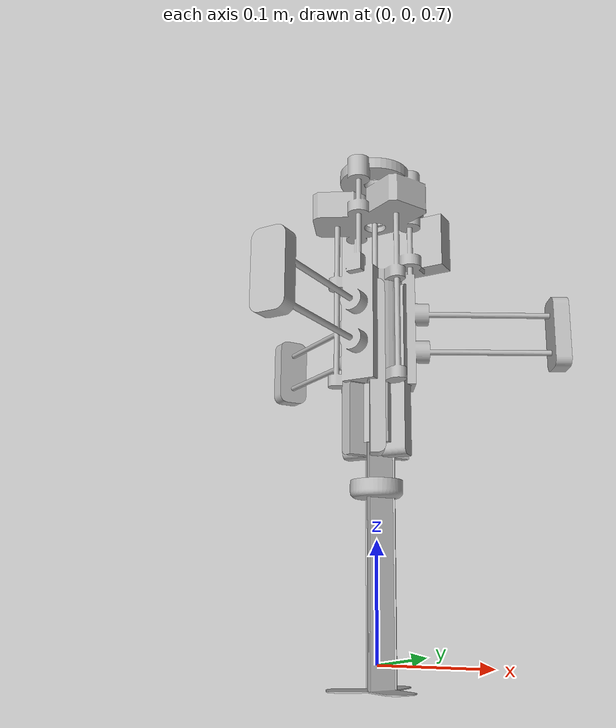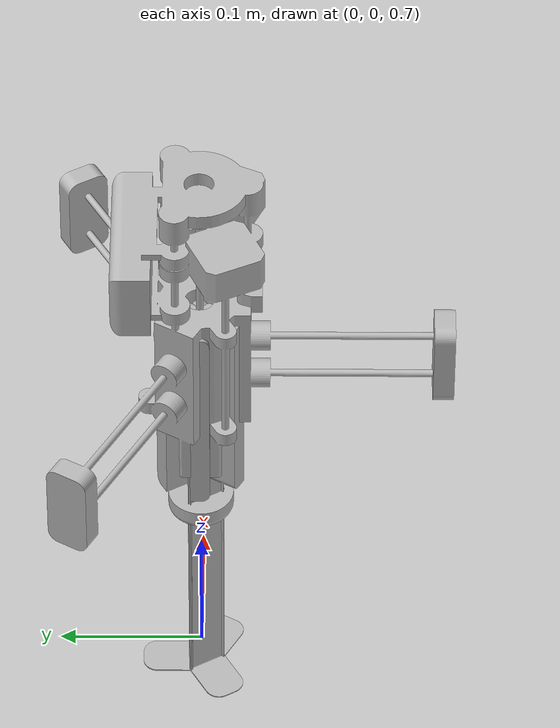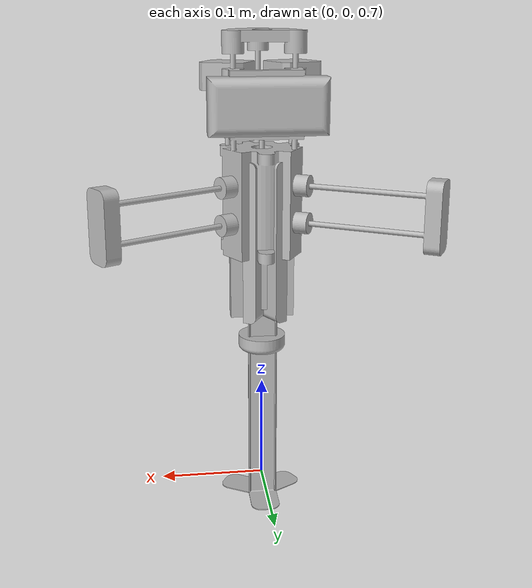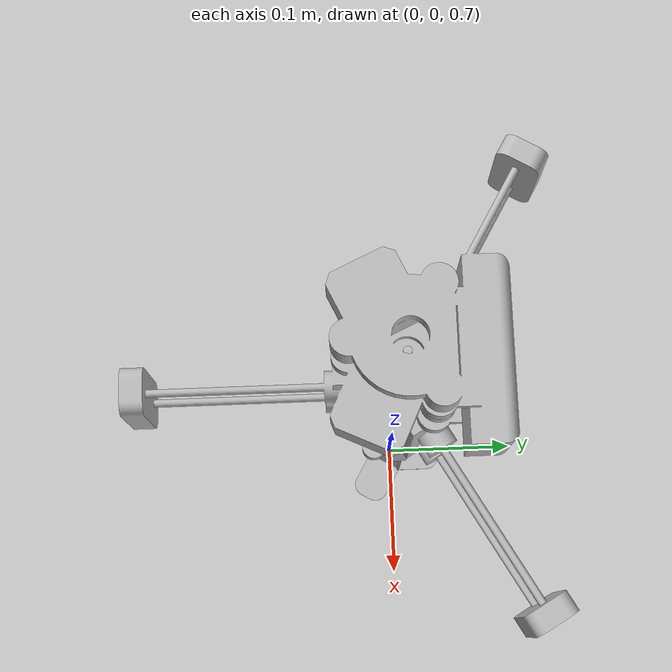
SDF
<sdf version='1.7'>
  <model name='gripper'>
    <joint name='world_to_base' type='fixed'>
      <pose relative_to='__model__'>0 0 1 3.14159 -0 0</pose>
      <parent>world</parent>
      <child>gripper_base_link</child>
    </joint>
    <link name='gripper_base_link'>
      <pose relative_to='world_to_base'>0 0 0 0 -0 0</pose>
      <inertial>
        <pose>0 0 0.025 3.14159 -0 0</pose>
        <mass>1.5</mass>
        <inertia>
          <ixx>0.00995</ixx>
          <ixy>2.73e-06</ixy>
          <ixz>-1.432e-05</ixz>
          <iyy>0.01008</iyy>
          <iyz>0.00012138</iyz>
          <izz>0.00513</izz>
        </inertia>
      </inertial>
      <collision name='gripper_base_link_collision'>
        <pose>0 0 0 0 -0 0</pose>
        <geometry>
          <cylinder>
            <length>0.1</length>
            <radius>0.03</radius>
          </cylinder>
        </geometry>
      </collision>
      <visual name='gripper_base_link_visual'>
        <pose>0 0 0 0 -0 0</pose>
        <geometry>
          <mesh>
            <scale>1 1 1</scale>
            <uri>model://gripper_description/meshes/main body visual.STL</uri>
          </mesh>
        </geometry>
      </visual>
    </link>
    <joint name='finger_1_prismatic_joint' type='prismatic'>
      <pose relative_to='gripper_base_link'>0 0 0 -0 -1.5708 0</pose>
      <parent>gripper_base_link</parent>
      <child>finger_1_intermediate</child>
      <axis>
        <xyz>0 1 0</xyz>
        <limit>
          <lower>0.049</lower>
          <upper>0.134</upper>
          <effort>40</effort>
          <velocity>0.015</velocity>
        </limit>
        <dynamics>
          <damping>1</damping>
          <friction>0</friction>
          <spring_reference>0</spring_reference>
          <spring_stiffness>0</spring_stiffness>
        </dynamics>
      </axis>
    </joint>
    <link name='finger_1_intermediate'>
      <pose relative_to='finger_1_prismatic_joint'>0 0 0 0 -0 0</pose>
      <inertial>
        <pose>0 0 0 0 -0 0</pose>
        <mass>0.1</mass>
        <inertia>
          <ixx>5.559e-05</ixx>
          <ixy>-4.723e-05</ixy>
          <ixz>1.16e-06</ixz>
          <iyy>0.00014636</iyy>
          <iyz>1e-06</iyz>
          <izz>0.00015418</izz>
        </inertia>
      </inertial>
      <collision name='finger_1_intermediate_collision'>
        <pose>0 0 0 0 -0 0</pose>
        <geometry>
          <mesh>
            <scale>1 1 1</scale>
            <uri>model://gripper_description/meshes/nut collision.STL</uri>
          </mesh>
        </geometry>
      </collision>
      <visual name='finger_1_intermediate_visual'>
        <pose>0 0 0 0 -0 0</pose>
        <geometry>
          <mesh>
            <scale>1 1 1</scale>
            <uri>model://gripper_description/meshes/nut visual.STL</uri>
          </mesh>
        </geometry>
      </visual>
    </link>
    <joint name='finger_1_revolute_joint' type='revolute'>
      <pose relative_to='finger_1_intermediate'>0 0 0 0 -0 0</pose>
      <parent>finger_1_intermediate</parent>
      <child>finger_1</child>
      <axis>
        <xyz>0 0 1</xyz>
        <limit>
          <lower>-0.7</lower>
          <upper>0.7</upper>
          <effort>40</effort>
          <velocity>0.1</velocity>
        </limit>
        <dynamics>
          <damping>1</damping>
          <friction>0</friction>
          <spring_reference>0</spring_reference>
          <spring_stiffness>0</spring_stiffness>
        </dynamics>
      </axis>
    </joint>
    <link name='finger_1'>
      <pose relative_to='finger_1_revolute_joint'>0 0 0 0 -0 0</pose>
      <inertial>
        <pose>0 0 0 0 -0 0</pose>
        <mass>0.2</mass>
        <inertia>
          <ixx>0.00028344</ixx>
          <ixy>-0.00056723</ixy>
          <ixz>-6.59e-06</ixz>
          <iyy>0.00138</iyy>
          <iyz>2.4e-06</iyz>
          <izz>0.0016</izz>
        </inertia>
      </inertial>
      <collision name='finger_1_collision'>
        <pose>0 0 0 0 -0 0</pose>
        <geometry>
          <mesh>
            <scale>1 1 1</scale>
            <uri>model://gripper_description/meshes/finger platform collision.STL</uri>
          </mesh>
        </geometry>
      </collision>
      <visual name='finger_1_visual'>
        <pose>0 0 0 0 -0 0</pose>
        <geometry>
          <mesh>
            <scale>1 1 1</scale>
            <uri>model://gripper_description/meshes/finger platform visual.STL</uri>
          </mesh>
        </geometry>
      </visual>
    </link>
    <joint name='finger_2_prismatic_joint' type='prismatic'>
      <pose relative_to='gripper_base_link'>0 0 0 -2.0944 -1.5708 0</pose>
      <parent>gripper_base_link</parent>
      <child>finger_2_intermediate</child>
      <axis>
        <xyz>0 1 0</xyz>
        <limit>
          <lower>0.049</lower>
          <upper>0.134</upper>
          <effort>40</effort>
          <velocity>0.015</velocity>
        </limit>
        <dynamics>
          <damping>1</damping>
          <friction>0</friction>
          <spring_reference>0</spring_reference>
          <spring_stiffness>0</spring_stiffness>
        </dynamics>
      </axis>
    </joint>
    <link name='finger_2_intermediate'>
      <pose relative_to='finger_2_prismatic_joint'>0 0 0 0 -0 0</pose>
      <inertial>
        <pose>0 0 0 0 -0 0</pose>
        <mass>0.1</mass>
        <inertia>
          <ixx>5.559e-05</ixx>
          <ixy>-4.723e-05</ixy>
          <ixz>1.16e-06</ixz>
          <iyy>0.00014636</iyy>
          <iyz>1e-06</iyz>
          <izz>0.00015418</izz>
        </inertia>
      </inertial>
      <collision name='finger_2_intermediate_collision'>
        <pose>0 0 0 0 -0 0</pose>
        <geometry>
          <mesh>
            <scale>1 1 1</scale>
            <uri>model://gripper_description/meshes/nut collision.STL</uri>
          </mesh>
        </geometry>
      </collision>
      <visual name='finger_2_intermediate_visual'>
        <pose>0 0 0 0 -0 0</pose>
        <geometry>
          <mesh>
            <scale>1 1 1</scale>
            <uri>model://gripper_description/meshes/nut visual.STL</uri>
          </mesh>
        </geometry>
      </visual>
    </link>
    <joint name='finger_2_revolute_joint' type='revolute'>
      <pose relative_to='finger_2_intermediate'>0 0 0 0 -0 0</pose>
      <parent>finger_2_intermediate</parent>
      <child>finger_2</child>
      <axis>
        <xyz>0 0 1</xyz>
        <limit>
          <lower>-0.7</lower>
          <upper>0.7</upper>
          <effort>40</effort>
          <velocity>0.1</velocity>
        </limit>
        <dynamics>
          <damping>1</damping>
          <friction>0</friction>
          <spring_reference>0</spring_reference>
          <spring_stiffness>0</spring_stiffness>
        </dynamics>
      </axis>
    </joint>
    <link name='finger_2'>
      <pose relative_to='finger_2_revolute_joint'>0 0 0 0 -0 0</pose>
      <inertial>
        <pose>0 0 0 0 -0 0</pose>
        <mass>0.2</mass>
        <inertia>
          <ixx>0.00028344</ixx>
          <ixy>-0.00056723</ixy>
          <ixz>-6.59e-06</ixz>
          <iyy>0.00138</iyy>
          <iyz>2.4e-06</iyz>
          <izz>0.0016</izz>
        </inertia>
      </inertial>
      <collision name='finger_2_collision'>
        <pose>0 0 0 0 -0 0</pose>
        <geometry>
          <mesh>
            <scale>1 1 1</scale>
            <uri>model://gripper_description/meshes/finger platform collision.STL</uri>
          </mesh>
        </geometry>
      </collision>
      <visual name='finger_2_visual'>
        <pose>0 0 0 0 -0 0</pose>
        <geometry>
          <mesh>
            <scale>1 1 1</scale>
            <uri>model://gripper_description/meshes/finger platform visual.STL</uri>
          </mesh>
        </geometry>
      </visual>
    </link>
    <joint name='finger_3_prismatic_joint' type='prismatic'>
      <pose relative_to='gripper_base_link'>0 0 0 2.0944 -1.5708 0</pose>
      <parent>gripper_base_link</parent>
      <child>finger_3_intermediate</child>
      <axis>
        <xyz>0 1 0</xyz>
        <limit>
          <lower>0.049</lower>
          <upper>0.134</upper>
          <effort>40</effort>
          <velocity>0.015</velocity>
        </limit>
        <dynamics>
          <damping>1</damping>
          <friction>0</friction>
          <spring_reference>0</spring_reference>
          <spring_stiffness>0</spring_stiffness>
        </dynamics>
      </axis>
    </joint>
    <link name='finger_3_intermediate'>
      <pose relative_to='finger_3_prismatic_joint'>0 0 0 0 -0 0</pose>
      <inertial>
        <pose>0 0 0 0 -0 0</pose>
        <mass>0.1</mass>
        <inertia>
          <ixx>5.559e-05</ixx>
          <ixy>-4.723e-05</ixy>
          <ixz>1.16e-06</ixz>
          <iyy>0.00014636</iyy>
          <iyz>1e-06</iyz>
          <izz>0.00015418</izz>
        </inertia>
      </inertial>
      <collision name='finger_3_intermediate_collision'>
        <pose>0 0 0 0 -0 0</pose>
        <geometry>
          <mesh>
            <scale>1 1 1</scale>
            <uri>model://gripper_description/meshes/nut collision.STL</uri>
          </mesh>
        </geometry>
      </collision>
      <visual name='finger_3_intermediate_visual'>
        <pose>0 0 0 0 -0 0</pose>
        <geometry>
          <mesh>
            <scale>1 1 1</scale>
            <uri>model://gripper_description/meshes/nut visual.STL</uri>
          </mesh>
        </geometry>
      </visual>
    </link>
    <joint name='finger_3_revolute_joint' type='revolute'>
      <pose relative_to='finger_3_intermediate'>0 0 0 0 -0 0</pose>
      <parent>finger_3_intermediate</parent>
      <child>finger_3</child>
      <axis>
        <xyz>0 0 1</xyz>
        <limit>
          <lower>-0.7</lower>
          <upper>0.7</upper>
          <effort>40</effort>
          <velocity>0.1</velocity>
        </limit>
        <dynamics>
          <damping>1</damping>
          <friction>0</friction>
          <spring_reference>0</spring_reference>
          <spring_stiffness>0</spring_stiffness>
        </dynamics>
      </axis>
    </joint>
    <link name='finger_3'>
      <pose relative_to='finger_3_revolute_joint'>0 0 0 0 -0 0</pose>
      <inertial>
        <pose>0 0 0 0 -0 0</pose>
        <mass>0.2</mass>
        <inertia>
          <ixx>0.00028344</ixx>
          <ixy>-0.00056723</ixy>
          <ixz>-6.59e-06</ixz>
          <iyy>0.00138</iyy>
          <iyz>2.4e-06</iyz>
          <izz>0.0016</izz>
        </inertia>
      </inertial>
      <collision name='finger_3_collision'>
        <pose>0 0 0 0 -0 0</pose>
        <geometry>
          <mesh>
            <scale>1 1 1</scale>
            <uri>model://gripper_description/meshes/finger platform collision.STL</uri>
          </mesh>
        </geometry>
      </collision>
      <visual name='finger_3_visual'>
        <pose>0 0 0 0 -0 0</pose>
        <geometry>
          <mesh>
            <scale>1 1 1</scale>
            <uri>model://gripper_description/meshes/finger platform visual.STL</uri>
          </mesh>
        </geometry>
      </visual>
    </link>
    <joint name='palm_prismatic_joint' type='prismatic'>
      <pose relative_to='gripper_base_link'>0 0 0 0 -1.5708 0</pose>
      <parent>gripper_base_link</parent>
      <child>palm</child>
      <axis>
        <xyz>1 0 0</xyz>
        <limit>
          <lower>0</lower>
          <upper>0.165</upper>
          <effort>40</effort>
          <velocity>0.036</velocity>
        </limit>
        <dynamics>
          <damping>1</damping>
          <friction>0</friction>
          <spring_reference>0</spring_reference>
          <spring_stiffness>0</spring_stiffness>
        </dynamics>
      </axis>
    </joint>
    <link name='palm'>
      <pose relative_to='palm_prismatic_joint'>0 0 0 0 -0 0</pose>
      <inertial>
        <pose>0 0 0 0 -0 0</pose>
        <mass>0.05</mass>
        <inertia>
          <ixx>1e-05</ixx>
          <ixy>0</ixy>
          <ixz>0</ixz>
          <iyy>1e-05</iyy>
          <iyz>0</iyz>
          <izz>1e-05</izz>
        </inertia>
      </inertial>
      <collision name='palm_collision'>
        <pose>0 0 0 0 -0 0</pose>
        <geometry>
          <mesh>
            <scale>1 1 1</scale>
            <uri>model://gripper_description/meshes/palm collision.STL</uri>
          </mesh>
        </geometry>
      </collision>
      <visual name='palm_visual'>
        <pose>0 0 0 0 -0 0</pose>
        <geometry>
          <mesh>
            <scale>1 1 1</scale>
            <uri>model://gripper_description/meshes/palm visual.STL</uri>
          </mesh>
        </geometry>
      </visual>
    </link>
  </model>
</sdf>
